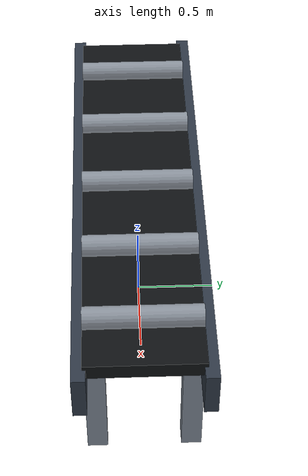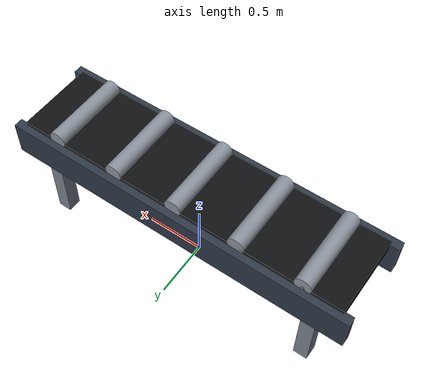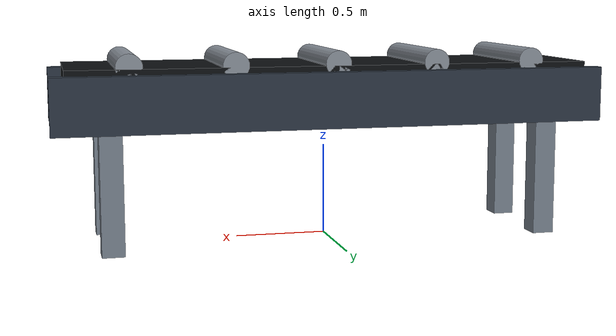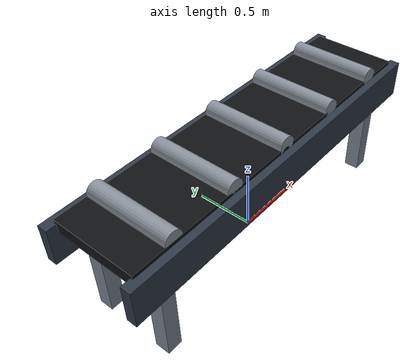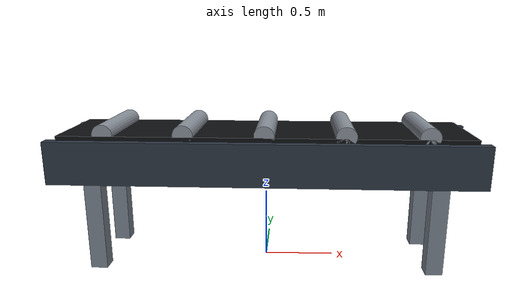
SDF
<?xml version="1.0"?>
<sdf version="1.9">
  <model name="conveyor">
    <static>true</static>
    <link name="link">
      <collision name="collision_belt">
        <pose>0 0 0.82 0 0 0</pose>
        <geometry><box><size>3.0 0.8 0.36</size></box></geometry>
      </collision>
      <collision name="collision_leg_1"><pose>-1.2 -0.28 0.38 0 0 0</pose><geometry><box><size>0.12 0.12 0.76</size></box></geometry></collision>
      <collision name="collision_leg_2"><pose>-1.2 0.28 0.38 0 0 0</pose><geometry><box><size>0.12 0.12 0.76</size></box></geometry></collision>
      <collision name="collision_leg_3"><pose>1.2 -0.28 0.38 0 0 0</pose><geometry><box><size>0.12 0.12 0.76</size></box></geometry></collision>
      <collision name="collision_leg_4"><pose>1.2 0.28 0.38 0 0 0</pose><geometry><box><size>0.12 0.12 0.76</size></box></geometry></collision>
      <visual name="belt">
        <pose>0 0 0.92 0 0 0</pose>
        <geometry><box><size>2.85 0.68 0.10</size></box></geometry>
        <material><diffuse>0.055 0.065 0.075 1</diffuse><pbr><metal><roughness>0.75</roughness></metal></pbr></material>
      </visual>
      <visual name="left_frame"><pose>0 -0.36 0.79 0 0 0</pose><geometry><box><size>3.0 0.08 0.30</size></box></geometry><material><diffuse>0.18 0.22 0.27 1</diffuse><pbr><metal><roughness>0.35</roughness></metal></pbr></material></visual>
      <visual name="right_frame"><pose>0 0.36 0.79 0 0 0</pose><geometry><box><size>3.0 0.08 0.30</size></box></geometry><material><diffuse>0.18 0.22 0.27 1</diffuse><pbr><metal><roughness>0.35</roughness></metal></pbr></material></visual>
      <visual name="leg_1"><pose>-1.20 -0.28 0.38 0 0 0</pose><geometry><box><size>0.12 0.12 0.76</size></box></geometry><material><diffuse>0.48 0.52 0.57 1</diffuse></material></visual>
      <visual name="leg_2"><pose>-1.20 0.28 0.38 0 0 0</pose><geometry><box><size>0.12 0.12 0.76</size></box></geometry><material><diffuse>0.48 0.52 0.57 1</diffuse></material></visual>
      <visual name="leg_3"><pose>1.20 -0.28 0.38 0 0 0</pose><geometry><box><size>0.12 0.12 0.76</size></box></geometry><material><diffuse>0.48 0.52 0.57 1</diffuse></material></visual>
      <visual name="leg_4"><pose>1.20 0.28 0.38 0 0 0</pose><geometry><box><size>0.12 0.12 0.76</size></box></geometry><material><diffuse>0.48 0.52 0.57 1</diffuse></material></visual>
      <visual name="roller_1"><pose>-1.1 0 0.98 1.5708 0 0</pose><geometry><cylinder><radius>0.07</radius><length>0.68</length></cylinder></geometry><material><diffuse>0.55 0.58 0.62 1</diffuse><pbr><metal><roughness>0.25</roughness></metal></pbr></material></visual>
      <visual name="roller_2"><pose>-0.55 0 0.98 1.5708 0 0</pose><geometry><cylinder><radius>0.07</radius><length>0.68</length></cylinder></geometry><material><diffuse>0.55 0.58 0.62 1</diffuse><pbr><metal><roughness>0.25</roughness></metal></pbr></material></visual>
      <visual name="roller_3"><pose>0 0 0.98 1.5708 0 0</pose><geometry><cylinder><radius>0.07</radius><length>0.68</length></cylinder></geometry><material><diffuse>0.55 0.58 0.62 1</diffuse><pbr><metal><roughness>0.25</roughness></metal></pbr></material></visual>
      <visual name="roller_4"><pose>0.55 0 0.98 1.5708 0 0</pose><geometry><cylinder><radius>0.07</radius><length>0.68</length></cylinder></geometry><material><diffuse>0.55 0.58 0.62 1</diffuse><pbr><metal><roughness>0.25</roughness></metal></pbr></material></visual>
      <visual name="roller_5"><pose>1.1 0 0.98 1.5708 0 0</pose><geometry><cylinder><radius>0.07</radius><length>0.68</length></cylinder></geometry><material><diffuse>0.55 0.58 0.62 1</diffuse><pbr><metal><roughness>0.25</roughness></metal></pbr></material></visual>
    </link>
  </model>
</sdf>
